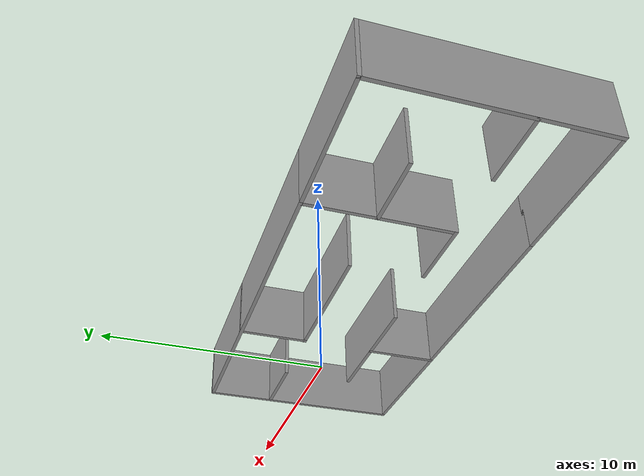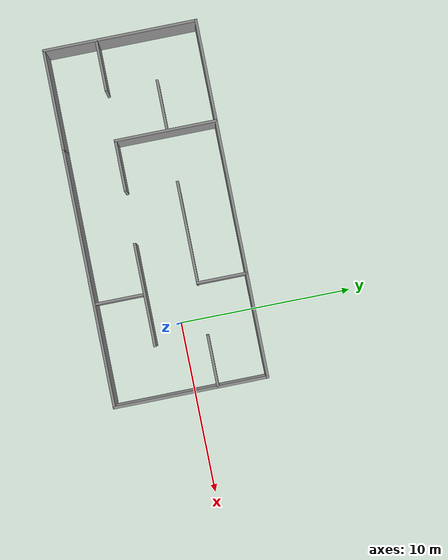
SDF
<?xml version='1.0'?>
<sdf version='1.7'>
  <model name='world_demo'>
    <pose>-6.40311 -0.1754 0 0 -0 0</pose>
    <link name='Wall_10'>
      <collision name='Wall_10_Collision'>
        <geometry>
          <box>
            <size>6 0.15 2.5</size>
          </box>
        </geometry>
        <pose>0 0 1.25 0 -0 0</pose>
      </collision>
      <visual name='Wall_10_Visual'>
        <pose>0 0 1.25 0 -0 0</pose>
        <geometry>
          <box>
            <size>6 0.15 2.5</size>
          </box>
        </geometry>
        <material>
          <script>
            <uri>file://media/materials/scripts/gazebo.material</uri>
            <name>Gazebo/Grey</name>
          </script>
          <ambient>1 1 1 1</ambient>
        </material>
        <meta>
          <layer>0</layer>
        </meta>
      </visual>
      <pose>1.44696 1.57637 0 0 -0 0</pose>
    </link>
    <link name='Wall_11'>
      <collision name='Wall_11_Collision'>
        <geometry>
          <box>
            <size>3 0.15 2.5</size>
          </box>
        </geometry>
        <pose>0 0 1.25 0 -0 0</pose>
      </collision>
      <visual name='Wall_11_Visual'>
        <pose>0 0 1.25 0 -0 0</pose>
        <geometry>
          <box>
            <size>3 0.15 2.5</size>
          </box>
        </geometry>
        <material>
          <script>
            <uri>file://media/materials/scripts/gazebo.material</uri>
            <name>Gazebo/Grey</name>
          </script>
          <ambient>1 1 1 1</ambient>
        </material>
        <meta>
          <layer>0</layer>
        </meta>
      </visual>
      <pose>4.34883 3.00137 0 0 -0 1.5708</pose>
    </link>
    <link name='Wall_13'>
      <collision name='Wall_13_Collision'>
        <geometry>
          <box>
            <size>3 0.15 2.5</size>
          </box>
        </geometry>
        <pose>0 0 1.25 0 -0 0</pose>
      </collision>
      <visual name='Wall_13_Visual'>
        <pose>0 0 1.25 0 -0 0</pose>
        <geometry>
          <box>
            <size>3 0.15 2.5</size>
          </box>
        </geometry>
        <material>
          <script>
            <uri>file://media/materials/scripts/gazebo.material</uri>
            <name>Gazebo/Grey</name>
          </script>
          <ambient>1 1 1 1</ambient>
        </material>
        <meta>
          <layer>0</layer>
        </meta>
      </visual>
      <pose>8.84731 1.55324 0 0 -0 3.14159</pose>
    </link>
    <link name='Wall_15'>
      <collision name='Wall_15_Collision'>
        <geometry>
          <box>
            <size>15 0.15 2.5</size>
          </box>
        </geometry>
        <pose>0 0 1.25 0 -0 0</pose>
      </collision>
      <visual name='Wall_15_Visual'>
        <pose>0 0 1.25 0 -0 0</pose>
        <geometry>
          <box>
            <size>15 0.15 2.5</size>
          </box>
        </geometry>
        <material>
          <script>
            <uri>file://media/materials/scripts/gazebo.material</uri>
            <name>Gazebo/Grey</name>
          </script>
          <ambient>1 1 1 1</ambient>
        </material>
        <meta>
          <layer>0</layer>
        </meta>
      </visual>
      <pose>2.925 4.42363 0 0 -0 3.14159</pose>
    </link>
    <link name='Wall_16'>
      <collision name='Wall_16_Collision'>
        <geometry>
          <box>
            <size>6 0.15 2.5</size>
          </box>
        </geometry>
        <pose>0 0 1.25 0 -0 0</pose>
      </collision>
      <visual name='Wall_16_Visual'>
        <pose>0 0 1.25 0 -0 0</pose>
        <geometry>
          <box>
            <size>6 0.15 2.5</size>
          </box>
        </geometry>
        <material>
          <script>
            <uri>file://media/materials/scripts/gazebo.material</uri>
            <name>Gazebo/Grey</name>
          </script>
          <ambient>1 1 1 1</ambient>
        </material>
        <meta>
          <layer>0</layer>
        </meta>
      </visual>
      <pose>-4.5 1.49863 0 0 -0 -1.5708</pose>
    </link>
    <link name='Wall_17'>
      <collision name='Wall_17_Collision'>
        <geometry>
          <box>
            <size>3 0.15 2.5</size>
          </box>
        </geometry>
        <pose>0 0 1.25 0 -0 0</pose>
      </collision>
      <visual name='Wall_17_Visual'>
        <pose>0 0 1.25 0 -0 0</pose>
        <geometry>
          <box>
            <size>3 0.15 2.5</size>
          </box>
        </geometry>
        <material>
          <script>
            <uri>file://media/materials/scripts/gazebo.material</uri>
            <name>Gazebo/Grey</name>
          </script>
          <ambient>1 1 1 1</ambient>
        </material>
        <meta>
          <layer>0</layer>
        </meta>
      </visual>
      <pose>-3.075 -1.42637 0 0 -0 0</pose>
    </link>
    <link name='Wall_19'>
      <collision name='Wall_19_Collision'>
        <geometry>
          <box>
            <size>6 0.15 2.5</size>
          </box>
        </geometry>
        <pose>0 0 1.25 0 -0 0</pose>
      </collision>
      <visual name='Wall_19_Visual'>
        <pose>0 0 1.25 0 -0 0</pose>
        <geometry>
          <box>
            <size>6 0.15 2.5</size>
          </box>
        </geometry>
        <material>
          <script>
            <uri>file://media/materials/scripts/gazebo.material</uri>
            <name>Gazebo/Grey</name>
          </script>
          <ambient>1 1 1 1</ambient>
        </material>
        <meta>
          <layer>0</layer>
        </meta>
      </visual>
      <pose>-7.425 4.42363 0 0 -0 3.14159</pose>
    </link>
    <link name='Wall_2'>
      <collision name='Wall_2_Collision'>
        <geometry>
          <box>
            <size>15 0.15 2.5</size>
          </box>
        </geometry>
        <pose>0 0 1.25 0 -0 0</pose>
      </collision>
      <visual name='Wall_2_Visual'>
        <pose>0 0 1.25 0 -0 0</pose>
        <geometry>
          <box>
            <size>15 0.15 2.5</size>
          </box>
        </geometry>
        <material>
          <script>
            <uri>file://media/materials/scripts/gazebo.material</uri>
            <name>Gazebo/Grey</name>
          </script>
          <ambient>1 1 1 1</ambient>
        </material>
        <meta>
          <layer>0</layer>
        </meta>
      </visual>
      <pose>2.925 -4.42637 0 0 -0 0</pose>
    </link>
    <link name='Wall_20'>
      <collision name='Wall_20_Collision'>
        <geometry>
          <box>
            <size>9 0.15 2.5</size>
          </box>
        </geometry>
        <pose>0 0 1.25 0 -0 0</pose>
      </collision>
      <visual name='Wall_20_Visual'>
        <pose>0 0 1.25 0 -0 0</pose>
        <geometry>
          <box>
            <size>9 0.15 2.5</size>
          </box>
        </geometry>
        <material>
          <script>
            <uri>file://media/materials/scripts/gazebo.material</uri>
            <name>Gazebo/Grey</name>
          </script>
          <ambient>1 1 1 1</ambient>
        </material>
        <meta>
          <layer>0</layer>
        </meta>
      </visual>
      <pose>-10.35 -0.001372 0 0 -0 -1.5708</pose>
    </link>
    <link name='Wall_21'>
      <collision name='Wall_21_Collision'>
        <geometry>
          <box>
            <size>6 0.15 2.5</size>
          </box>
        </geometry>
        <pose>0 0 1.25 0 -0 0</pose>
      </collision>
      <visual name='Wall_21_Visual'>
        <pose>0 0 1.25 0 -0 0</pose>
        <geometry>
          <box>
            <size>6 0.15 2.5</size>
          </box>
        </geometry>
        <material>
          <script>
            <uri>file://media/materials/scripts/gazebo.material</uri>
            <name>Gazebo/Grey</name>
          </script>
          <ambient>1 1 1 1</ambient>
        </material>
        <meta>
          <layer>0</layer>
        </meta>
      </visual>
      <pose>-7.425 -4.42637 0 0 -0 0</pose>
    </link>
    <link name='Wall_23'>
      <collision name='Wall_23_Collision'>
        <geometry>
          <box>
            <size>3 0.15 2.5</size>
          </box>
        </geometry>
        <pose>0 0 1.25 0 -0 0</pose>
      </collision>
      <visual name='Wall_23_Visual'>
        <pose>0 0 1.25 0 -0 0</pose>
        <geometry>
          <box>
            <size>3 0.15 2.5</size>
          </box>
        </geometry>
        <material>
          <script>
            <uri>file://media/materials/scripts/gazebo.material</uri>
            <name>Gazebo/Grey</name>
          </script>
          <ambient>1 1 1 1</ambient>
        </material>
        <meta>
          <layer>0</layer>
        </meta>
      </visual>
      <pose>-5.95628 1.57637 0 0 -0 3.14159</pose>
    </link>
    <link name='Wall_25'>
      <collision name='Wall_25_Collision'>
        <geometry>
          <box>
            <size>3 0.15 2.5</size>
          </box>
        </geometry>
        <pose>0 0 1.25 0 -0 0</pose>
      </collision>
      <visual name='Wall_25_Visual'>
        <pose>0 0 1.25 0 -0 0</pose>
        <geometry>
          <box>
            <size>3 0.15 2.5</size>
          </box>
        </geometry>
        <material>
          <script>
            <uri>file://media/materials/scripts/gazebo.material</uri>
            <name>Gazebo/Grey</name>
          </script>
          <ambient>1 1 1 1</ambient>
        </material>
        <meta>
          <layer>0</layer>
        </meta>
      </visual>
      <pose>-8.91206 -1.38435 0 0 -0 0</pose>
    </link>
    <link name='Wall_3'>
      <collision name='Wall_3_Collision'>
        <geometry>
          <box>
            <size>9 0.15 2.5</size>
          </box>
        </geometry>
        <pose>0 0 1.25 0 -0 0</pose>
      </collision>
      <visual name='Wall_3_Visual'>
        <pose>0 0 1.25 0 -0 0</pose>
        <geometry>
          <box>
            <size>9 0.15 2.5</size>
          </box>
        </geometry>
        <material>
          <script>
            <uri>file://media/materials/scripts/gazebo.material</uri>
            <name>Gazebo/Grey</name>
          </script>
          <ambient>1 1 1 1</ambient>
        </material>
        <meta>
          <layer>0</layer>
        </meta>
      </visual>
      <pose>10.35 -0.001372 0 0 -0 1.5708</pose>
    </link>
    <link name='Wall_5'>
      <collision name='Wall_5_Collision'>
        <geometry>
          <box>
            <size>3 0.15 2.5</size>
          </box>
        </geometry>
        <pose>0 0 1.25 0 -0 0</pose>
      </collision>
      <visual name='Wall_5_Visual'>
        <pose>0 0 1.25 0 -0 0</pose>
        <geometry>
          <box>
            <size>3 0.15 2.5</size>
          </box>
        </geometry>
        <material>
          <script>
            <uri>file://media/materials/scripts/gazebo.material</uri>
            <name>Gazebo/Grey</name>
          </script>
          <ambient>1 1 1 1</ambient>
        </material>
        <meta>
          <layer>0</layer>
        </meta>
      </visual>
      <pose>4.39714 -2.94319 0 0 -0 1.5708</pose>
    </link>
    <link name='Wall_8'>
      <collision name='Wall_8_Collision'>
        <geometry>
          <box>
            <size>6 0.15 2.5</size>
          </box>
        </geometry>
        <pose>0 0 1.25 0 -0 0</pose>
      </collision>
      <visual name='Wall_8_Visual'>
        <pose>0 0 1.25 0 -0 0</pose>
        <geometry>
          <box>
            <size>6 0.15 2.5</size>
          </box>
        </geometry>
        <material>
          <script>
            <uri>file://media/materials/scripts/gazebo.material</uri>
            <name>Gazebo/Grey</name>
          </script>
          <ambient>1 1 1 1</ambient>
        </material>
        <meta>
          <layer>0</layer>
        </meta>
      </visual>
      <pose>4.43285 -1.5 0 0 -0 3.14159</pose>
    </link>
    <static>1</static>
  </model>
</sdf>
